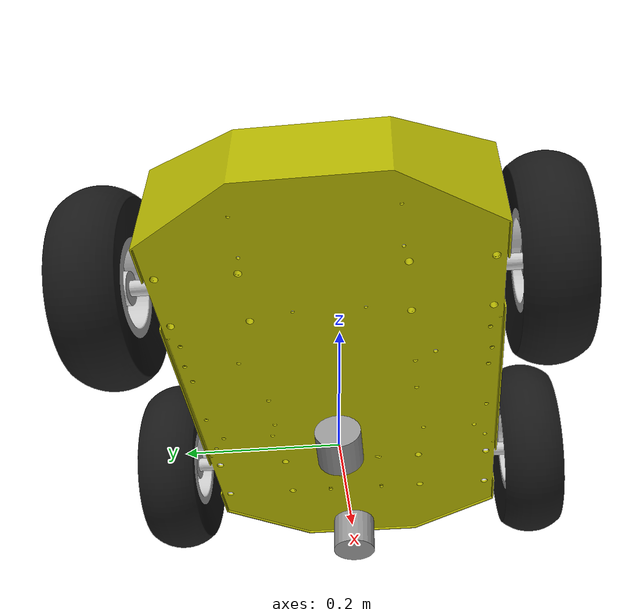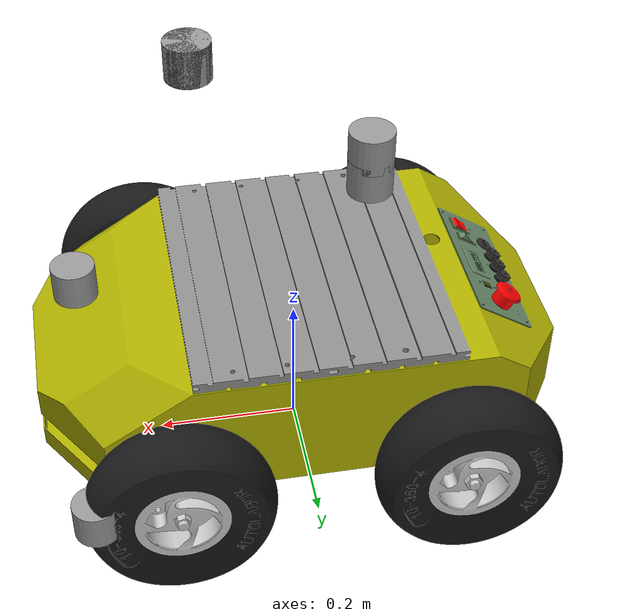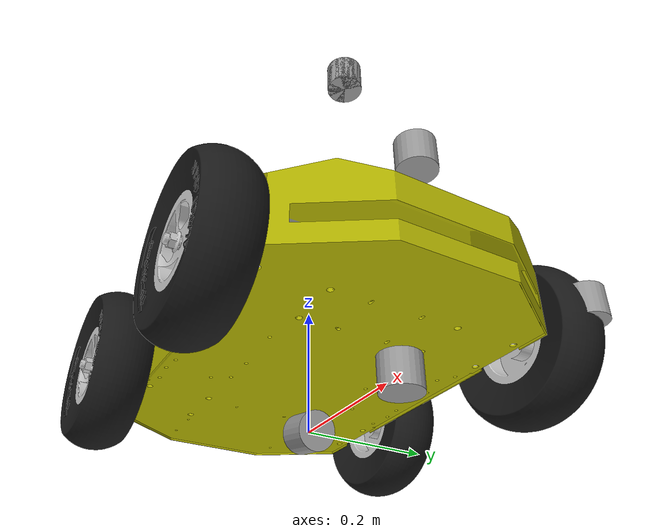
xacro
<?xml version="1.0"?>
	<!-- Revolute-Revolute Manipulator -->
	<robot name="autolabor_pro1" xmlns:xacro="http://www.ros.org/wiki/xacro">

	<!-- Base Link -->
	<link name="base_link">
		<collision>
			<origin xyz="0 0 0.18288" rpy="0 0 0"/>
			<geometry>
				<box size="0.7248 0.4302 0.195"/>
			</geometry>
		</collision>

		<visual>
			<origin xyz="0 0 0" rpy="0 0 0"/>
			<geometry>
				<mesh filename="package://autolabor_description/meshes/pro1_body_color.dae"/>
			</geometry>
		</visual>

	</link>

	<link name="left_front_wheel">
		<collision>
			<origin xyz="0 0 0" rpy="1.5708 0 0"/>
			<geometry>
				<cylinder length="0.0822" radius="0.127"/>
			</geometry>
		</collision>

		<visual>
			<origin xyz="0 0 0" rpy="0 0 0"/>
			<geometry>
				<mesh filename="package://autolabor_description/meshes/pro1_wheel_color.dae"/>
			</geometry>
		</visual>

		<inertial>
			<origin xyz="0 0 0" rpy="0 0 0"/>
			<mass value="1.5"/>
			<inertia ixx="0.013" ixy="0.0" ixz="0.0" iyy="0.0074" iyz="0.0" izz="0.0074"/>
		</inertial>
	</link>

	<link name="left_back_wheel">
		<collision>
			<origin xyz="0 0 0" rpy="1.5708 0 0"/>
			<geometry>
				<cylinder length="0.0822" radius="0.127"/>
			</geometry>
		</collision>

		<visual>
			<origin xyz="0 0 0" rpy="0 0 0"/>
			<geometry>
				<mesh filename="package://autolabor_description/meshes/pro1_wheel_color.dae"/>
			</geometry>
		</visual>

		<inertial>
			<origin xyz="0 0 0" rpy="0 0 0"/>
			<mass value="1.5"/>
			<inertia ixx="0.013" ixy="0.0" ixz="0.0" iyy="0.0074" iyz="0.0" izz="0.0074"/>
		</inertial>
	</link>

	<link name="right_front_wheel">
		<collision>
			<origin xyz="0 0 0" rpy="1.5708 0 0"/>
			<geometry>
				<cylinder length="0.0822" radius="0.127"/>
			</geometry>
		</collision>

		<visual>
			<origin xyz="0 0 0" rpy="0 0 3.1415926535897931"/>
			<geometry>
				<mesh filename="package://autolabor_description/meshes/pro1_wheel_color.dae"/>
			</geometry>
		</visual>

		<inertial>
			<origin xyz="0 0 0" rpy="0 0 3.1415926535897931"/>
			<mass value="1.5"/>
			<inertia ixx="0.013" ixy="0.0" ixz="0.0" iyy="0.0074" iyz="0.0" izz="0.0074"/>
		</inertial>
	</link>

	<link name="right_back_wheel">
		<collision>
			<origin xyz="0 0 0" rpy="1.5708 0 0"/>
			<geometry>
				<cylinder length="0.0822" radius="0.127"/>
			</geometry>
		</collision>

		<visual>
			<origin xyz="0 0 0" rpy="0 0 3.1415926535897931"/>
			<geometry>
				<mesh filename="package://autolabor_description/meshes/pro1_wheel_color.dae"/>
			</geometry>
		</visual>

		<inertial>
			<origin xyz="0 0 0" rpy="0 0 3.1415926535897931"/>
			<mass value="1.5"/>
			<inertia ixx="0.013" ixy="0.0" ixz="0.0" iyy="0.0074" iyz="0.0" izz="0.0074"/>
		</inertial>
	</link>

	<joint name="joint_left_front" type="continuous">
		<parent link="base_link"/>
		<child link="left_front_wheel"/>
		<origin xyz="0.19649 0.2643 0.11913" rpy="0 0 0"/>
		<axis xyz="0 1 0"/>
		<dynamics damping="0.7"/>
	</joint>

	<joint name="joint_left_back" type="continuous">
		<parent link="base_link"/>
		<child link="left_back_wheel"/>
		<origin xyz="-0.18988 0.2643 0.11913" rpy="0 0 0"/>
		<axis xyz="0 1 0"/>
		<dynamics damping="0.7"/>
	</joint>

	<joint name="joint_right_front" type="continuous">
		<parent link="base_link"/>
		<child link="right_front_wheel"/>
		<origin xyz="0.19649 -0.2643 0.11913" rpy="0 0 0"/>
		<axis xyz="0 1 0"/>
		<dynamics damping="0.7"/>
	</joint>

	<joint name="joint_right_back" type="continuous">
		<parent link="base_link"/>
		<child link="right_back_wheel"/>
		<origin xyz="-0.18988 -0.2643 0.11913" rpy="0 0 0"/>
		<axis xyz="0 1 0"/>
		<dynamics damping="0.7"/>
	</joint>

    <link name="imu_link">
        <visual>
            <origin xyz="0 0 0"/>
            <geometry>
                <cylinder length="0.05" radius="0.03"/>
            </geometry>
            <material name="gray"/>
        </visual>
    </link>
	<joint name="imu_link_joint" type="fixed">
		<parent link="base_link"/>
		<child link="imu_link"/>
		<origin xyz="0.23 0.0 0.0"/>
	</joint>

	<link name="GNSS1">
        <visual>
            <origin xyz="0 0 0"/>
            <geometry>
                <cylinder length="0.05" radius="0.03"/>
            </geometry>
            <material name="gray"/>
        </visual>
    </link>
	<joint name="GNSS1_joint" type="fixed">
		<parent link="base_link"/>
		<child link="GNSS1"/>
		<origin xyz="0.305 0.28 0.140"/>
	</joint>

    <link name="camera_link">
        <visual>
            <origin xyz="0 0 0"/>
            <geometry>
                <cylinder length="0.05" radius="0.03"/>
            </geometry>
            <material name="gray"/>
        </visual>
    </link>
	<joint name="camera_joint" type="fixed">
		<parent link="base_link"/>
		<child link="camera_link"/>
		<origin xyz="0.30 0 0.30" rpy="0 0.0 0"/>
	</joint>
    <link name="rslidar">
        <visual>
            <origin xyz="0 0 0"/>
            <geometry>
                <cylinder length="0.05" radius="0.03"/>
            </geometry>
            <material name="gray"/>
        </visual>
    </link>
	<joint name="rslidar_joint" type="fixed">
		<parent link="base_link"/>
		<child link="rslidar"/>
		<origin xyz="0.13 0.00 0.62"/>
	</joint>
    <link name="camera_rgb_optical_frame">
        <visual>
            <origin xyz="0 0 0"/>
            <geometry>
                <cylinder length="0.05" radius="0.03"/>
            </geometry>
            <material name="gray"/>
        </visual>
    </link>
	<joint name="camera_rgb_optical_frame_joint" type="fixed">
		<parent link="base_link"/>
		<child link="camera_rgb_optical_frame"/>
		<origin xyz="0.0 0 0.0" rpy="-0.00556 1.7705 0.0"/>
	</joint>
	    <link name="velodyne">
        <visual>
            <origin xyz="0 0 0"/>
            <geometry>
                <cylinder length="0.05" radius="0.03"/>
            </geometry>
            <material name="gray"/>
        </visual>
    </link>
	<joint name="velodyne_joint" type="fixed">
		<parent link="base_link"/>
		<child link="velodyne"/>
		<origin xyz="-0.09 0.05 0.46"/>
	</joint>
	    <link name="blue">
        <visual>
            <origin xyz="0 0 0"/>
            <geometry>
                <cylinder length="0.05" radius="0.03"/>
            </geometry>
            <material name="gray"/>
        </visual>
    </link>
	<joint name="blue_joint" type="fixed">
		<parent link="base_link"/>
		<child link="blue"/>
		<origin xyz="-0.09 0.05 0.50"/>
	</joint>
    <link name="wanji">
        <visual>
            <origin xyz="0 0 0"/>
            <geometry>
                <cylinder length="0.05" radius="0.03"/>
            </geometry>
            <material name="gray"/>
        </visual>
    </link>
	<joint name="wanji_joint" type="fixed">
		<parent link="base_link"/>
		<child link="wanji"/>
		<origin xyz="0.13 0.00 0.62" rpy="0 0 -1.570796"/>
	</joint>
    <link name="wanji2">
        <visual>
            <origin xyz="0 0 0"/>
            <geometry>
                <cylinder length="0.05" radius="0.03"/>
            </geometry>
            <material name="gray"/>
        </visual>
    </link>
	<joint name="wanji_joint2" type="fixed">
		<parent link="base_link"/>
		<child link="wanji2"/>
		<origin xyz="0.13 0.00 0.62" rpy="0 0 1.570796"/>
	</joint>
</robot>
